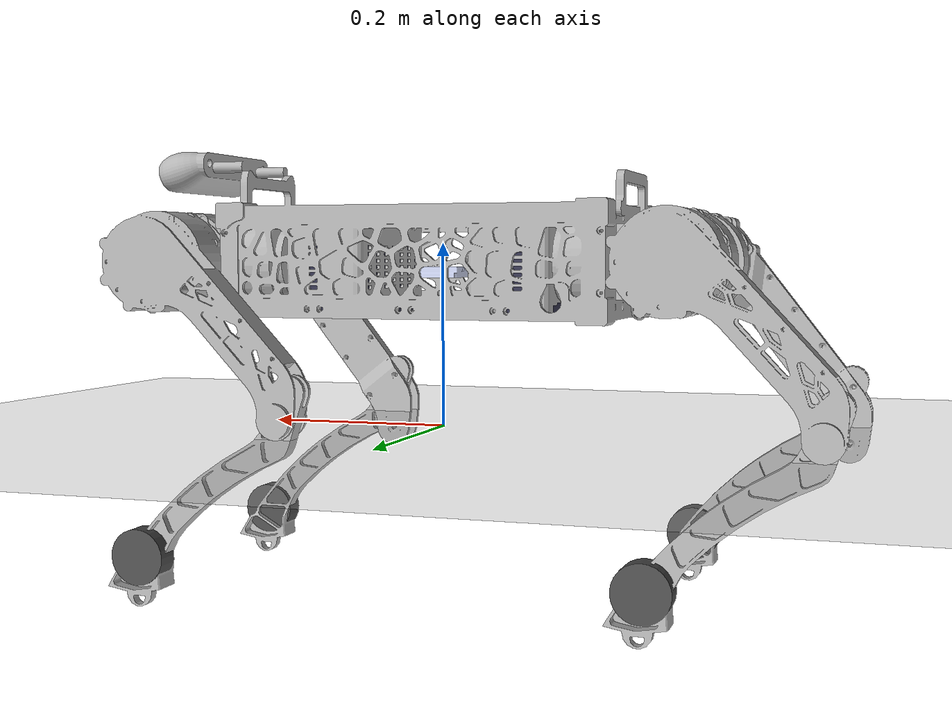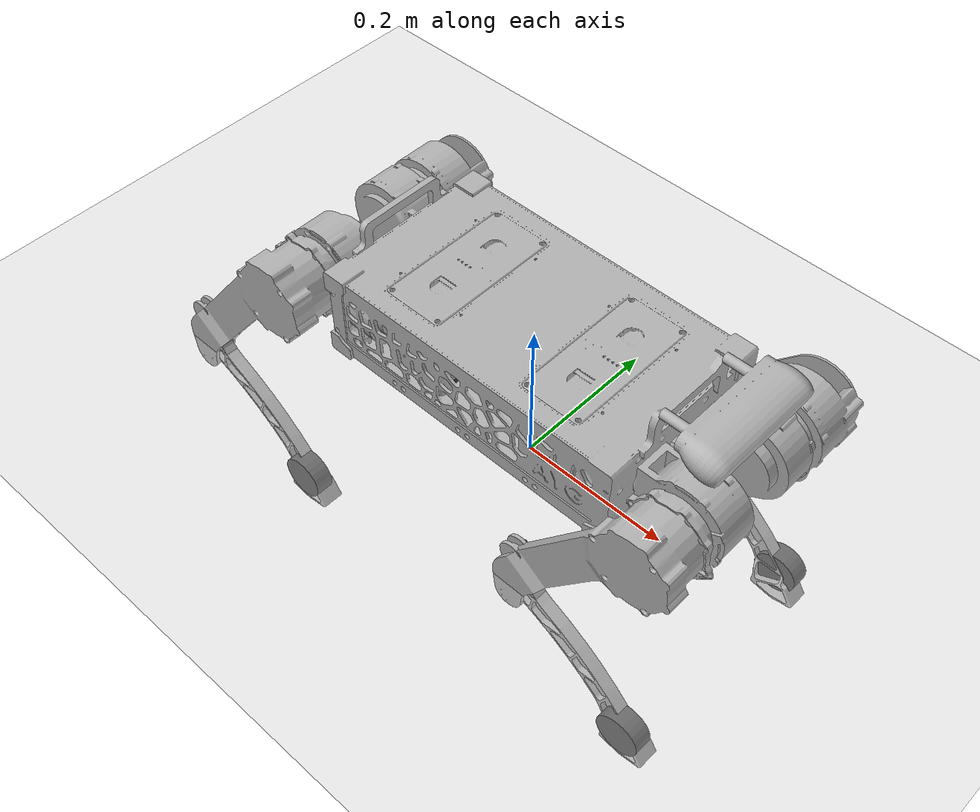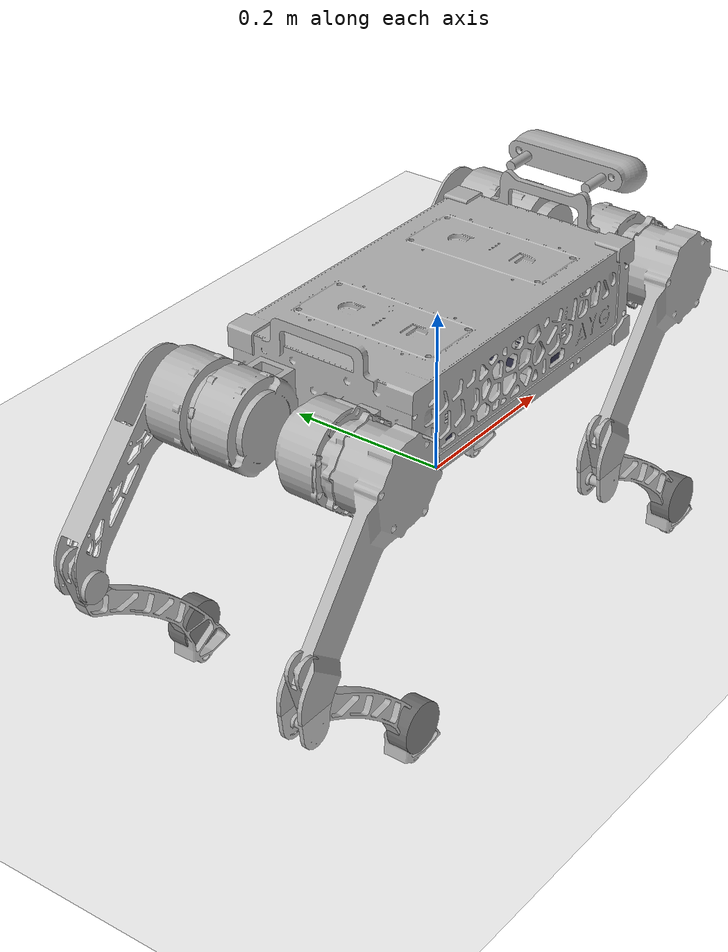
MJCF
<mujoco model="ayg">
  <compiler angle="radian" meshdir="../../meshes/1.2"/>

  <option timestep="0.001" iterations="50" solver="Newton" gravity="0 0 -9.81"
          noslip_iterations="5"/>

  <default>
    <joint damping="0" armature="0"/>
    <geom friction="1.5 0.005 0.001" condim="6" contype="1" conaffinity="1" solimp="0.9 0.95 0.001" solref="0.02 1"/>
    <motor ctrllimited="true"/>
  </default>

  <asset>
    <texture type="2d" name="grid" builtin="checker" rgb1="0.9 0.9 0.9" rgb2="0.6 0.6 0.6"
             width="512" height="512"/>
    <material name="grid_mat" texture="grid" texrepeat="8 8" reflectance="0.2"/>

    <mesh name="Base" file="Base.STL"/>
    <mesh name="L_Hip" file="L_Hip.STL"/>
    <mesh name="R_Hip" file="R_Hip.STL"/>
    <mesh name="L_Thigh" file="L_Thigh.STL"/>
    <mesh name="R_Thigh" file="R_Thigh.STL"/>
    <mesh name="L_Shank" file="L_Shank.STL"/>
    <mesh name="R_Shank" file="R_Shank.STL"/>
    <mesh name="IMU" file="IMU.STL"/>
    <mesh name="Camera" file="Camera.STL"/>
  </asset>

  <worldbody>
    <light pos="0 0 3" dir="0 0 -1" diffuse="0.8 0.8 0.8" specular="0.3 0.3 0.3"/>
    <geom name="floor" type="plane" size="5 5 0.1" material="grid_mat" contype="1" conaffinity="1"
          friction="1.5 0.005 0.001" condim="6" solimp="0.9 0.95 0.001" solref="0.02 1"/>

    <body name="Base" pos="0 0 0.18">
      <freejoint name="float_base"/>
      <!-- Base mass — Measured: 9.148 kg (CAD: 9.1298 kg) -->
      <inertial pos="0.00057686 -0.00018498 0.0026529" mass="9.148"
                fullinertia="0.022082 0.031986 0.040389 3.2369e-07 6.8653e-05 2.8565e-07"/>
      <geom name="Base_visual" type="mesh" mesh="Base" rgba="0.69804 0.69804 0.69804 1"
            contype="0" conaffinity="0" group="1"/>
      <geom name="Base_collision" type="box" size="0.2 0.115 0.06" rgba="0.69804 0.69804 0.69804 1"
            group="3"/>
      <site name="imu_site" pos="-3.793e-05 0 -0.01723" size="0.001" rgba="0 1 0 1"/>

      <!-- IMU visual (fixed to Base) -->
      <geom name="IMU_visual" type="mesh" mesh="IMU" pos="-3.793e-05 0 -0.01723"
            rgba="0.792 0.820 0.933 1" contype="0" conaffinity="0" group="1"/>

      <!-- Intel RealSense D555 housing (fixed to Base, rotated 90deg around X). -->
      <geom name="Camera_visual" type="mesh" mesh="Camera" pos="0.2475 0 0.105"
            quat="0.707107 0.707107 0 0" rgba="0.69804 0.69804 0.69804 1"
            contype="0" conaffinity="0" group="1"/>
      <!-- Forward-looking color camera at the D555 mounting point.
           xyaxes maps MuJoCo camera (-z fwd) to Base (+x fwd, +z up).
           fovy=65 matches D555 RGB vertical FoV. -->
      <camera name="Camera_color" pos="0.2475 0 0.105" xyaxes="0 -1 0 0 0 1" fovy="65"/>

      <!-- ==================== Batteries (front-to-back, under top hatches) ==================== -->
      <body name="Battery_Front" pos="0.10070 0 -0.00900">
        <inertial pos="-0.00002 -0.00421 0.04143" mass="1.6"
                  fullinertia="0.0044576 0.0076771 0.0044479 -4.1873e-06 -5.2038e-06 -0.00026672"/>
        <geom name="Battery_Front_visual" type="box" size="0.0395 0.0885 0.048"
              rgba="0.2 0.2 0.3 1" contype="0" conaffinity="0" group="1"/>
        <geom name="Battery_Front_collision" type="box" size="0.0395 0.0885 0.048"
              group="3"/>
      </body>

      <body name="Battery_Rear" pos="-0.10070 0 -0.00900">
        <inertial pos="-0.00002 -0.00421 0.04143" mass="1.6"
                  fullinertia="0.0044576 0.0076771 0.0044479 -4.1873e-06 -5.2038e-06 -0.00026672"/>
        <geom name="Battery_Rear_visual" type="box" size="0.0395 0.0885 0.048"
              rgba="0.2 0.2 0.3 1" contype="0" conaffinity="0" group="1"/>
        <geom name="Battery_Rear_collision" type="box" size="0.0395 0.0885 0.048"
              group="3"/>
      </body>

      <!-- ==================== Left Front Leg ==================== -->
      <body name="LF_Hip" pos="0.2021 0.054 0">
        <inertial pos="0.063065 -0.0051556 -5.3332e-05" mass="1.0709"
                  fullinertia="0.00078713 0.0013471 0.00073074 -7.2738e-08 -1.6354e-06 -2.2108e-07"/>
        <joint name="LF_HAA" axis="1 0 0" range="-0.5236 0.43633"/>
        <geom name="LF_Hip_visual" type="mesh" mesh="L_Hip" rgba="0.69804 0.69804 0.69804 1"
              contype="0" conaffinity="0" group="1"/>
        <geom name="LF_Hip_collision" type="cylinder" size="0.05 0.074" pos="0.0665 0.04 0"
              quat="0.707107 0.707107 0 0" group="3"/>

        <body name="LF_Thigh" pos="0.0679 0.01985 0">
          <inertial pos="-0.0095261 0.047418 -0.010869" mass="1.361"
                    fullinertia="0.0012156 0.0022368 0.0012227 1.025e-06 -0.00042254 -1.3825e-06"/>
          <joint name="LF_HFE" axis="0 -1 0" range="-1.6668 3.2376"/>
          <geom name="LF_Thigh_visual" type="mesh" mesh="L_Thigh" rgba="0.69804 0.69804 0.69804 1"
                contype="0" conaffinity="0" group="1"/>
          <geom name="LF_Thigh_collision" type="box" size="0.0125 0.025 0.07"
                pos="-0.0975 0.08 -0.07" quat="0.653281 0.270598 0.270598 0.653281" group="3"/>

          <body name="LF_Shank" pos="-0.14936 0.058 -0.16017">
            <inertial pos="0.059297 0.0205 -0.044894" mass="0.19753"
                      fullinertia="0.00059399 0.0012346 0.00065333 -3.3081e-19 0.00058611 3.1645e-19"/>
            <joint name="LF_KFE" axis="0 -1 0" range="-0.74002 1.1868"/>
            <geom name="LF_Shank_visual" type="mesh" mesh="L_Shank" rgba="0.69804 0.69804 0.69804 1"
                  contype="0" conaffinity="0" group="1"/>
            <geom name="LF_Shank_collision_0" type="cylinder" size="0.025 0.015"
                  pos="0 0.02 0" quat="0.707107 0.707107 0 0" group="3"/>
            <geom name="LF_Shank_collision_1" type="box" size="0.0125 0.0825 0.00625"
                  pos="0.08 0.02 -0.075" quat="0.653281 0.653281 -0.270598 0.270598" group="3"/>

            <!-- LF Foot (fixed joint in URDF, merged here) -->
            <body name="LF_Foot" pos="0.165 0.0205 -0.151">
              <inertial pos="0 0 0" mass="0.07013"
                        fullinertia="1.9178e-05 3.1481e-05 1.9178e-05 0 0 0"/>
              <geom name="LF_Foot_visual" type="cylinder" size="0.03 0.0125"
                    quat="0.707107 0.707107 0 0" rgba="0.29804 0.29804 0.29804 1"
                    contype="0" conaffinity="0" group="1"/>
              <geom name="LF_Foot_collision" type="cylinder" size="0.03 0.0125" quat="0.707107 0.707107 0 0" friction="2.0 0.01 0.001" group="3"/>
              <site name="LF_Foot_contact" pos="0 0 0" size="0.001" rgba="1 0 0 1"/>
            </body>
          </body>
        </body>
      </body>

      <!-- ==================== Right Front Leg ==================== -->
      <body name="RF_Hip" pos="0.2021 -0.054 0">
        <inertial pos="0.063077 0.0051556 -6.5344e-05" mass="1.071"
                  fullinertia="0.00078713 0.0013471 0.00073074 7.2742e-08 -1.6354e-06 2.2108e-07"/>
        <joint name="RF_HAA" axis="1 0 0" range="-0.43633 0.5236"/>
        <geom name="RF_Hip_visual" type="mesh" mesh="R_Hip" rgba="0.69804 0.69804 0.69804 1"
              contype="0" conaffinity="0" group="1"/>
        <geom name="RF_Hip_collision" type="cylinder" size="0.05 0.074" pos="0.0665 -0.04 0"
              quat="0.707107 0.707107 0 0" group="3"/>

        <body name="RF_Thigh" pos="0.0679 -0.01985 0">
          <inertial pos="-0.0090964 -0.047418 -0.010862" mass="1.361"
                    fullinertia="0.0012156 0.0022368 0.0012226 -1.025e-06 -0.00041957 1.3825e-06"/>
          <joint name="RF_HFE" axis="0 -1 0" range="-1.6668 3.2376"/>
          <geom name="RF_Thigh_visual" type="mesh" mesh="R_Thigh" rgba="0.69804 0.69804 0.69804 1"
                contype="0" conaffinity="0" group="1"/>
          <geom name="RF_Thigh_collision" type="box" size="0.0125 0.025 0.07"
                pos="-0.0975 -0.08 -0.07" quat="0.653281 0.270598 0.270598 0.653281" group="3"/>

          <body name="RF_Shank" pos="-0.14936 -0.058 -0.16017">
            <inertial pos="0.059297 -0.0205 -0.044894" mass="0.19753"
                      fullinertia="0.00059399 0.0012346 0.00065333 -3.307e-19 0.00058611 3.1617e-19"/>
            <joint name="RF_KFE" axis="0 -1 0" range="-0.74002 1.1868"/>
            <geom name="RF_Shank_visual" type="mesh" mesh="R_Shank" rgba="0.69804 0.69804 0.69804 1"
                  contype="0" conaffinity="0" group="1"/>
            <geom name="RF_Shank_collision_0" type="cylinder" size="0.025 0.015"
                  pos="0 -0.02 0" quat="0.707107 0.707107 0 0" group="3"/>
            <geom name="RF_Shank_collision_1" type="box" size="0.0125 0.0825 0.00625"
                  pos="0.08 -0.02 -0.075" quat="0.653281 0.653281 -0.270598 0.270598" group="3"/>

            <!-- RF Foot -->
            <body name="RF_Foot" pos="0.165 -0.0205 -0.151">
              <inertial pos="0 0 0" mass="0.07013"
                        fullinertia="1.9178e-05 3.1481e-05 1.9178e-05 0 0 0"/>
              <geom name="RF_Foot_visual" type="cylinder" size="0.03 0.0125"
                    quat="0.707107 0.707107 0 0" rgba="0.29804 0.29804 0.29804 1"
                    contype="0" conaffinity="0" group="1"/>
              <geom name="RF_Foot_collision" type="cylinder" size="0.03 0.0125" quat="0.707107 0.707107 0 0" friction="2.0 0.01 0.001" group="3"/>
              <site name="RF_Foot_contact" pos="0 0 0" size="0.001" rgba="1 0 0 1"/>
            </body>
          </body>
        </body>
      </body>

      <!-- ==================== Left Hind Leg ==================== -->
      <body name="LH_Hip" pos="-0.2021 0.054 0" quat="0 0 0 1">
        <inertial pos="0.063077 0.0051556 -6.5344e-05" mass="1.0709"
                  fullinertia="0.00078713 0.0013471 0.00073074 -7.2738e-08 -1.6354e-06 -2.2108e-07"/>
        <joint name="LH_HAA" axis="-1 0 0" range="-0.5236 0.83776"/>
        <geom name="LH_Hip_visual" type="mesh" mesh="R_Hip" rgba="0.69804 0.69804 0.69804 1"
              contype="0" conaffinity="0" group="1"/>
        <geom name="LH_Hip_collision" type="cylinder" size="0.05 0.074" pos="0.0665 -0.04 0"
              quat="0.707107 0.707107 0 0" group="3"/>

        <body name="LH_Thigh" pos="0.0679 -0.01985 0" quat="0 0 0 1">
          <inertial pos="-0.0095261 0.047418 -0.010869" mass="1.361"
                    fullinertia="0.0012156 0.0022368 0.0012227 1.025e-06 -0.00042254 -1.3825e-06"/>
          <joint name="LH_HFE" axis="0 -1 0" range="-2.4522 2.4522"/>
          <geom name="LH_Thigh_visual" type="mesh" mesh="L_Thigh" rgba="0.69804 0.69804 0.69804 1"
                contype="0" conaffinity="0" group="1"/>
          <geom name="LH_Thigh_collision" type="box" size="0.0125 0.025 0.07"
                pos="-0.0975 0.08 -0.07" quat="0.653281 0.270598 0.270598 0.653281" group="3"/>

          <body name="LH_Shank" pos="-0.14936 0.058 -0.16017">
            <inertial pos="0.059297 0.0205 -0.044894" mass="0.19753"
                      fullinertia="0.00059399 0.0012346 0.00065333 -3.3081e-19 0.00058611 3.1645e-19"/>
            <joint name="LH_KFE" axis="0 -1 0" range="-0.74002 1.1868"/>
            <geom name="LH_Shank_visual" type="mesh" mesh="L_Shank" rgba="0.69804 0.69804 0.69804 1"
                  contype="0" conaffinity="0" group="1"/>
            <geom name="LH_Shank_collision_0" type="cylinder" size="0.025 0.015"
                  pos="0 0.02 0" quat="0.707107 0.707107 0 0" group="3"/>
            <geom name="LH_Shank_collision_1" type="box" size="0.0125 0.0825 0.00625"
                  pos="0.08 0.02 -0.075" quat="0.653281 0.653281 -0.270598 0.270598" group="3"/>

            <!-- LH Foot -->
            <body name="LH_Foot" pos="0.165 0.0205 -0.151">
              <inertial pos="0 0 0" mass="0.07013"
                        fullinertia="1.9178e-05 3.1481e-05 1.9178e-05 0 0 0"/>
              <geom name="LH_Foot_visual" type="cylinder" size="0.03 0.0125"
                    quat="0.707107 0.707107 0 0" rgba="0.29804 0.29804 0.29804 1"
                    contype="0" conaffinity="0" group="1"/>
              <geom name="LH_Foot_collision" type="cylinder" size="0.03 0.0125" quat="0.707107 0.707107 0 0" friction="2.0 0.01 0.001" group="3"/>
              <site name="LH_Foot_contact" pos="0 0 0" size="0.001" rgba="1 0 0 1"/>
            </body>
          </body>
        </body>
      </body>

      <!-- ==================== Right Hind Leg ==================== -->
      <body name="RH_Hip" pos="-0.2021 -0.054 0" quat="0 0 0 1">
        <inertial pos="-0.063065 0.0051556 -5.3332e-05" mass="1.071"
                  fullinertia="0.00078713 0.0013471 0.00073074 7.2742e-08 -1.6354e-06 2.2108e-07"/>
        <joint name="RH_HAA" axis="-1 0 0" range="-0.83776 0.5236"/>
        <geom name="RH_Hip_visual" type="mesh" mesh="L_Hip" rgba="0.69804 0.69804 0.69804 1"
              contype="0" conaffinity="0" group="1"/>
        <geom name="RH_Hip_collision" type="cylinder" size="0.05 0.074" pos="0.0665 0.04 0"
              quat="0.707107 0.707107 0 0" group="3"/>

        <body name="RH_Thigh" pos="0.0665 0.01985 0" quat="0 0 0 1">
          <inertial pos="-0.0090964 -0.047418 -0.010862" mass="1.361"
                    fullinertia="0.0012156 0.0022368 0.0012226 -1.025e-06 -0.00041957 1.3825e-06"/>
          <joint name="RH_HFE" axis="0 -1 0" range="-2.4522 2.4522"/>
          <geom name="RH_Thigh_visual" type="mesh" mesh="R_Thigh" rgba="0.69804 0.69804 0.69804 1"
                contype="0" conaffinity="0" group="1"/>
          <geom name="RH_Thigh_collision" type="box" size="0.0125 0.025 0.07"
                pos="-0.0975 -0.08 -0.07" quat="0.653281 0.270598 0.270598 0.653281" group="3"/>

          <body name="RH_Shank" pos="-0.14936 -0.058 -0.16017">
            <inertial pos="0.059297 -0.0205 -0.044894" mass="0.19753"
                      fullinertia="0.00059399 0.0012346 0.00065333 -3.307e-19 0.00058611 3.1617e-19"/>
            <joint name="RH_KFE" axis="0 -1 0" range="-0.74002 1.1868"/>
            <geom name="RH_Shank_visual" type="mesh" mesh="R_Shank" rgba="0.69804 0.69804 0.69804 1"
                  contype="0" conaffinity="0" group="1"/>
            <geom name="RH_Shank_collision_0" type="cylinder" size="0.025 0.015"
                  pos="0 -0.02 0" quat="0.707107 0.707107 0 0" group="3"/>
            <geom name="RH_Shank_collision_1" type="box" size="0.0125 0.0825 0.00625"
                  pos="0.08 -0.02 -0.075" quat="0.653281 0.653281 -0.270598 0.270598" group="3"/>

            <!-- RH Foot -->
            <body name="RH_Foot" pos="0.165 -0.0205 -0.151">
              <inertial pos="0 0 0" mass="0.07013"
                        fullinertia="1.9178e-05 3.1481e-05 1.9178e-05 0 0 0"/>
              <geom name="RH_Foot_visual" type="cylinder" size="0.03 0.0125"
                    quat="0.707107 0.707107 0 0" rgba="0.29804 0.29804 0.29804 1"
                    contype="0" conaffinity="0" group="1"/>
              <geom name="RH_Foot_collision" type="cylinder" size="0.03 0.0125" quat="0.707107 0.707107 0 0" friction="2.0 0.01 0.001" group="3"/>
              <site name="RH_Foot_contact" pos="0 0 0" size="0.001" rgba="1 0 0 1"/>
            </body>
          </body>
        </body>
      </body>
    </body>
  </worldbody>

  <actuator>
    <!-- Left Front -->
    <motor name="LF_HAA_motor" joint="LF_HAA" ctrlrange="-50 50" gear="1"/>
    <motor name="LF_HFE_motor" joint="LF_HFE" ctrlrange="-50 50" gear="1"/>
    <motor name="LF_KFE_motor" joint="LF_KFE" ctrlrange="-50 50" gear="1"/>
    <!-- Right Front -->
    <motor name="RF_HAA_motor" joint="RF_HAA" ctrlrange="-50 50" gear="1"/>
    <motor name="RF_HFE_motor" joint="RF_HFE" ctrlrange="-50 50" gear="1"/>
    <motor name="RF_KFE_motor" joint="RF_KFE" ctrlrange="-50 50" gear="1"/>
    <!-- Left Hind -->
    <motor name="LH_HAA_motor" joint="LH_HAA" ctrlrange="-50 50" gear="1"/>
    <motor name="LH_HFE_motor" joint="LH_HFE" ctrlrange="-50 50" gear="1"/>
    <motor name="LH_KFE_motor" joint="LH_KFE" ctrlrange="-50 50" gear="1"/>
    <!-- Right Hind -->
    <motor name="RH_HAA_motor" joint="RH_HAA" ctrlrange="-50 50" gear="1"/>
    <motor name="RH_HFE_motor" joint="RH_HFE" ctrlrange="-50 50" gear="1"/>
    <motor name="RH_KFE_motor" joint="RH_KFE" ctrlrange="-50 50" gear="1"/>
  </actuator>

  <sensor>
    <!-- IMU sensors on Base -->
    <accelerometer name="imu_acc" site="imu_site"/>
    <gyro name="imu_gyro" site="imu_site"/>

    <!-- Foot contact sensors -->
    <touch name="LF_Foot_touch" site="LF_Foot_contact"/>
    <touch name="RF_Foot_touch" site="RF_Foot_contact"/>
    <touch name="LH_Foot_touch" site="LH_Foot_contact"/>
    <touch name="RH_Foot_touch" site="RH_Foot_contact"/>

    <!-- Joint position/velocity sensors -->
    <jointpos name="LF_HAA_pos" joint="LF_HAA"/>
    <jointpos name="LF_HFE_pos" joint="LF_HFE"/>
    <jointpos name="LF_KFE_pos" joint="LF_KFE"/>
    <jointpos name="RF_HAA_pos" joint="RF_HAA"/>
    <jointpos name="RF_HFE_pos" joint="RF_HFE"/>
    <jointpos name="RF_KFE_pos" joint="RF_KFE"/>
    <jointpos name="LH_HAA_pos" joint="LH_HAA"/>
    <jointpos name="LH_HFE_pos" joint="LH_HFE"/>
    <jointpos name="LH_KFE_pos" joint="LH_KFE"/>
    <jointpos name="RH_HAA_pos" joint="RH_HAA"/>
    <jointpos name="RH_HFE_pos" joint="RH_HFE"/>
    <jointpos name="RH_KFE_pos" joint="RH_KFE"/>

    <jointvel name="LF_HAA_vel" joint="LF_HAA"/>
    <jointvel name="LF_HFE_vel" joint="LF_HFE"/>
    <jointvel name="LF_KFE_vel" joint="LF_KFE"/>
    <jointvel name="RF_HAA_vel" joint="RF_HAA"/>
    <jointvel name="RF_HFE_vel" joint="RF_HFE"/>
    <jointvel name="RF_KFE_vel" joint="RF_KFE"/>
    <jointvel name="LH_HAA_vel" joint="LH_HAA"/>
    <jointvel name="LH_HFE_vel" joint="LH_HFE"/>
    <jointvel name="LH_KFE_vel" joint="LH_KFE"/>
    <jointvel name="RH_HAA_vel" joint="RH_HAA"/>
    <jointvel name="RH_HFE_vel" joint="RH_HFE"/>
    <jointvel name="RH_KFE_vel" joint="RH_KFE"/>
  </sensor>
</mujoco>
